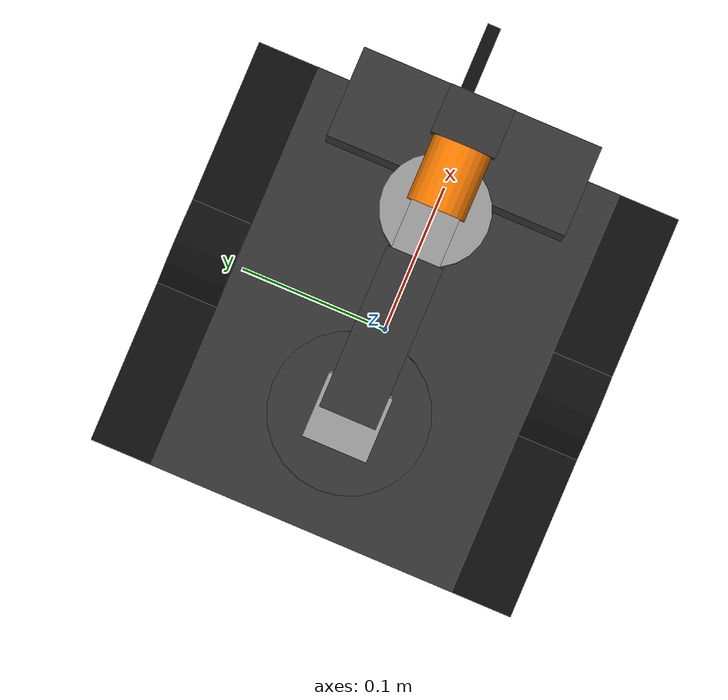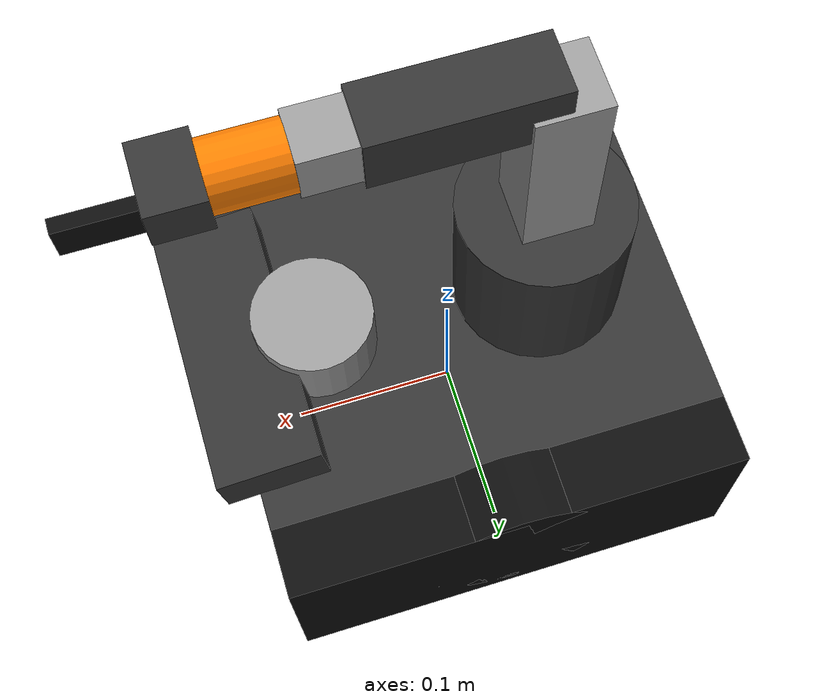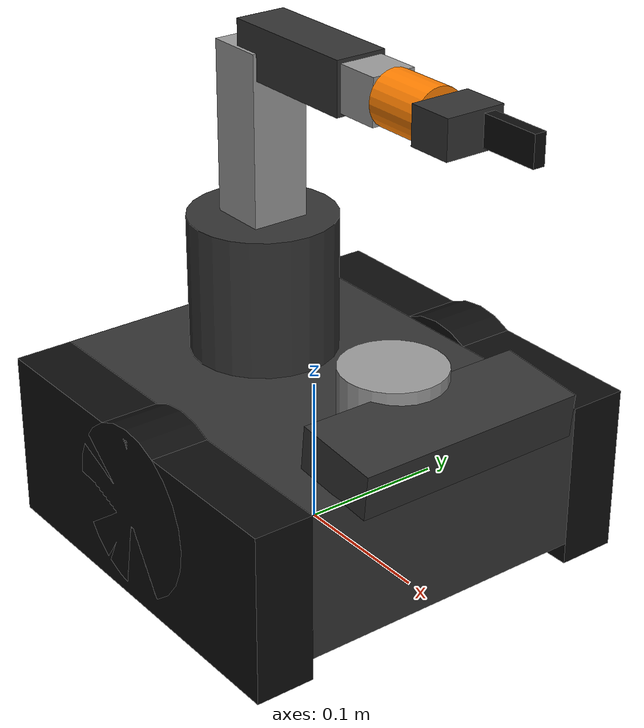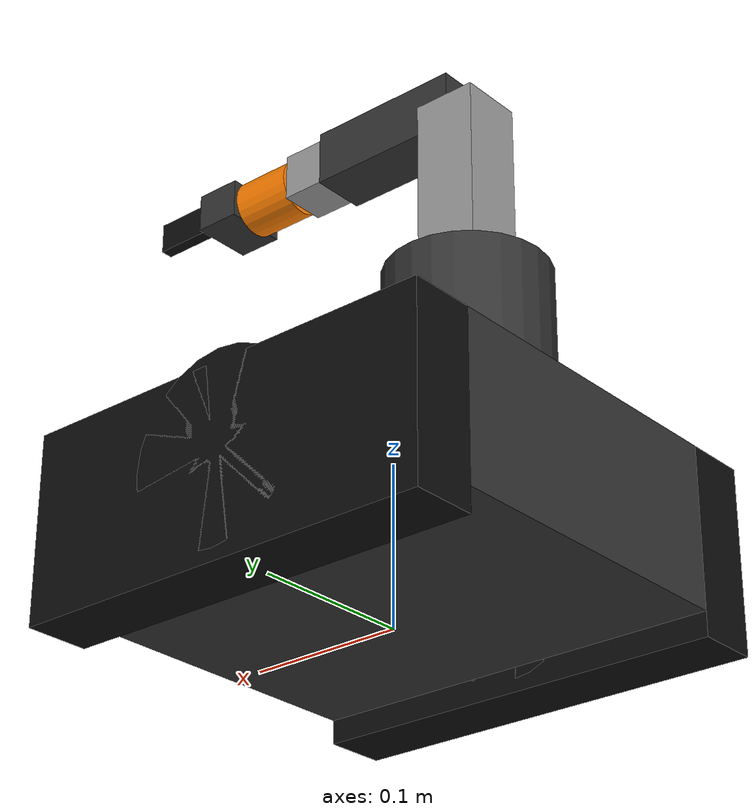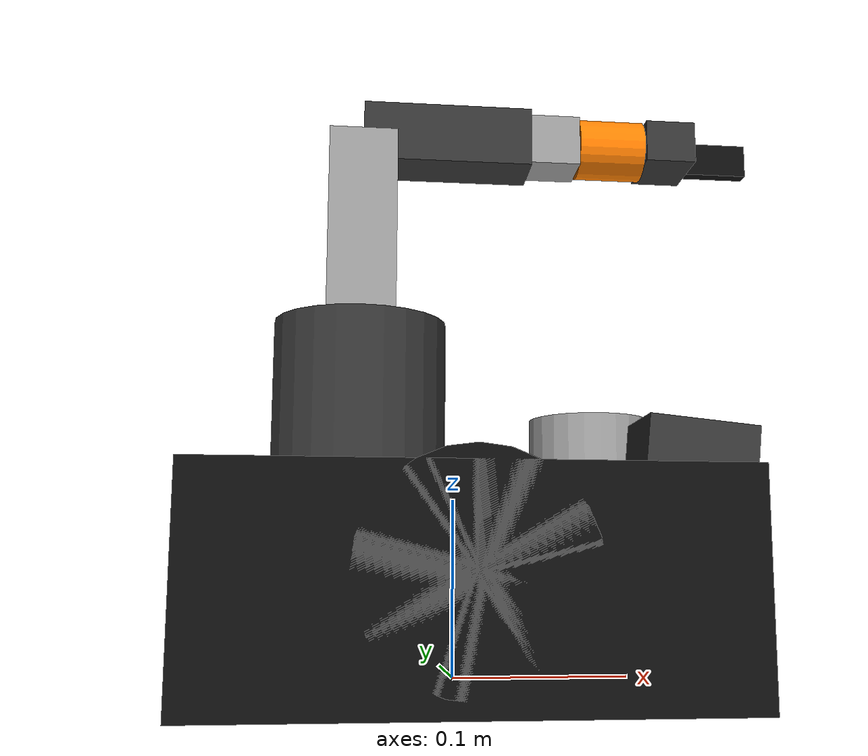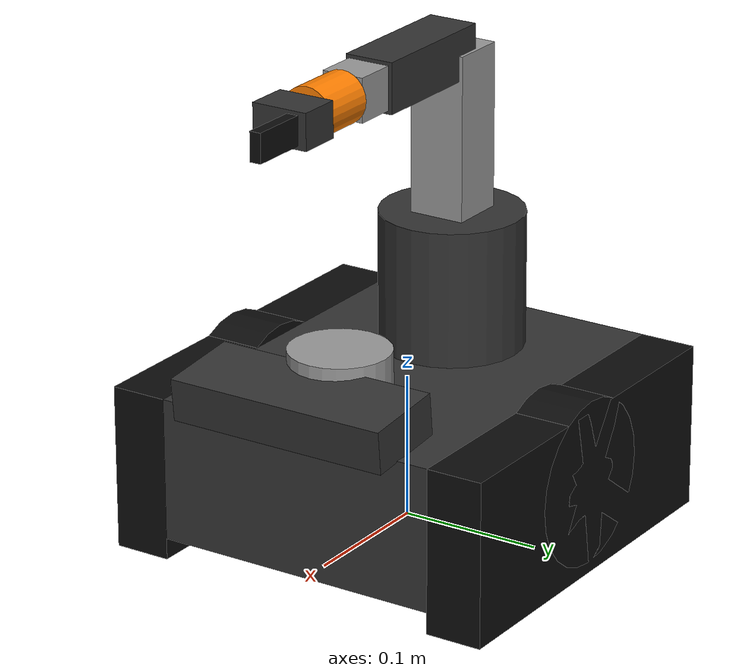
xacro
<?xml version="1.0"?>
<robot name="lunar_rover" xmlns:xacro="http://www.ros.org/wiki/xacro">

  <xacro:property name="PI" value="3.14159265"/>

  <!-- Chasis -->
  <xacro:property name="chassis_length" value="0.27"/>
  <xacro:property name="chassis_width"  value="0.205"/>
  <xacro:property name="chassis_height" value="0.10"/>
  <xacro:property name="chassis_mass"   value="3.5"/>

  <!-- Ruedas motrices -->
  <xacro:property name="wheel_radius"   value="0.0575"/>
  <xacro:property name="wheel_width"    value="0.04"/>
  <xacro:property name="wheel_mass"     value="0.2"/>

  <!-- Orugas (SOLO VISUALES ahora) -->
  <xacro:property name="track_length"   value="0.27"/>
  <xacro:property name="track_width"    value="0.04"/>
  <xacro:property name="track_height"   value="0.115"/>
  <xacro:property name="track_offset_y" value="0.1225"/>

  <!-- Brazo -->
  <xacro:property name="base_h"     value="0.095"/>
  <xacro:property name="upper_l"    value="0.115"/>
  <xacro:property name="forearm_l"  value="0.100"/>
  <xacro:property name="wrist_p_l"  value="0.030"/>
  <xacro:property name="wrist_r_l"  value="0.040"/>
  <xacro:property name="gripper_l"  value="0.030"/>

  <material name="dark_grey"><color rgba="0.2 0.2 0.2 1"/></material>
  <material name="light_grey"><color rgba="0.6 0.6 0.6 1"/></material>
  <material name="black"><color rgba="0.05 0.05 0.05 1"/></material>
  <material name="orange"><color rgba="1.0 0.5 0.0 1"/></material>

  <xacro:macro name="box_inertia" params="m x y z">
    <inertial>
      <mass value="${m}"/>
      <inertia ixx="${m*(y*y+z*z)/12}" ixy="0" ixz="0"
               iyy="${m*(x*x+z*z)/12}" iyz="0"
               izz="${m*(x*x+y*y)/12}"/>
    </inertial>
  </xacro:macro>

  <xacro:macro name="cylinder_inertia" params="m r h">
    <inertial>
      <mass value="${m}"/>
      <inertia ixx="${m*(3*r*r+h*h)/12}" ixy="0" ixz="0"
               iyy="${m*(3*r*r+h*h)/12}" iyz="0"
               izz="${m*r*r/2}"/>
    </inertial>
  </xacro:macro>

  <link name="base_footprint"/>

  <joint name="base_joint" type="fixed">
    <parent link="base_footprint"/>
    <child link="base_link"/>
    <!-- base_link a la altura del centro de las ruedas -->
    <origin xyz="0 0 ${wheel_radius}" rpy="0 0 0"/>
  </joint>

  <!-- ============================================================
       CHASIS PRINCIPAL
       ============================================================ -->
  <link name="base_link">
    <visual>
      <origin xyz="0 0 0" rpy="0 0 0"/>
      <geometry>
        <box size="${chassis_length} ${chassis_width} ${chassis_height}"/>
      </geometry>
      <material name="dark_grey"/>
    </visual>
    <collision>
      <origin xyz="0 0 0" rpy="0 0 0"/>
      <geometry>
        <box size="${chassis_length} ${chassis_width} ${chassis_height}"/>
      </geometry>
    </collision>
    <xacro:box_inertia m="${chassis_mass}"
                       x="${chassis_length}"
                       y="${chassis_width}"
                       z="${chassis_height}"/>
  </link>

  <xacro:macro name="track" params="side reflect">
    <link name="track_${side}">
      <visual>
        <origin xyz="0 0 0" rpy="0 0 0"/>
        <geometry>
          <box size="${track_length} ${track_width} ${track_height}"/>
        </geometry>
        <material name="black"/>
      </visual>
      <!-- NO collision aquí — orugas son visuales nomas -->
      <inertial>
        <mass value="0.05"/>
        <inertia ixx="0.0001" ixy="0" ixz="0"
                 iyy="0.0001" iyz="0"
                 izz="0.0001"/>
      </inertial>
    </link>

    <joint name="track_${side}_joint" type="fixed">
      <parent link="base_link"/>
      <child link="track_${side}"/>
      <!-- Centrada vertical respecto al chasis -->
      <origin xyz="0 ${reflect*track_offset_y} -0.0075" rpy="0 0 0"/>
    </joint>
  </xacro:macro>

  <xacro:track side="left"  reflect="1"/>
  <xacro:track side="right" reflect="-1"/>

  <xacro:macro name="drive_wheel" params="side reflect">
    <link name="wheel_${side}">
      <visual>
        <origin xyz="0 0 0" rpy="${PI/2} 0 0"/>
        <geometry>
          <cylinder radius="${wheel_radius}" length="${wheel_width}"/>
        </geometry>
        <material name="black"/>
      </visual>
      <collision>
        <origin xyz="0 0 0" rpy="${PI/2} 0 0"/>
        <geometry>
          <cylinder radius="${wheel_radius}" length="${wheel_width}"/>
        </geometry>
      </collision>
      <xacro:cylinder_inertia m="${wheel_mass}" r="${wheel_radius}" h="${wheel_width}"/>
    </link>

    <joint name="wheel_${side}_joint" type="continuous">
      <parent link="base_link"/>
      <child link="wheel_${side}"/>
      <!-- z=0: centro de la rueda en la misma altura que base_link -->
      <!-- y: ligeramente fuera del chasis para que las orugas las cubran -->
      <origin xyz="0 ${reflect*(chassis_width/2 + 0.02)} 0" rpy="0 0 0"/>
      <axis xyz="0 1 0"/>
      <dynamics damping="0.05" friction="0.1"/>
    </joint>
  </xacro:macro>

  <xacro:drive_wheel side="left"  reflect="1"/>
  <xacro:drive_wheel side="right" reflect="-1"/>

  <!-- ============================================================
       SENSOR LIDAR — LD14P
       ============================================================ -->
  <link name="lidar_link">
    <visual>
      <origin xyz="0 0 0" rpy="0 0 0"/>
      <geometry>
        <cylinder radius="0.035" length="0.04"/>
      </geometry>
      <material name="light_grey"/>
    </visual>
    <collision>
      <origin xyz="0 0 0" rpy="0 0 0"/>
      <geometry>
        <cylinder radius="0.035" length="0.04"/>
      </geometry>
    </collision>
    <xacro:cylinder_inertia m="0.1" r="0.035" h="0.04"/>
  </link>

  <joint name="lidar_joint" type="fixed">
    <parent link="base_link"/>
    <child link="lidar_link"/>
    <origin xyz="0.08 0 ${chassis_height/2 + 0.02}" rpy="0 0 0"/>
  </joint>

  <!-- ============================================================
       CÁMARA RGB-D — AstraPro
       ============================================================ -->
  <link name="camera_link">
    <visual>
      <origin xyz="0 0 0" rpy="0 0 0"/>
      <geometry>
        <box size="0.06 0.16 0.03"/>
      </geometry>
      <material name="dark_grey"/>
    </visual>
    <collision>
      <geometry>
        <box size="0.06 0.16 0.03"/>
      </geometry>
    </collision>
    <xacro:box_inertia m="0.08" x="0.06" y="0.16" z="0.03"/>
  </link>

  <joint name="camera_joint" type="fixed">
    <parent link="base_link"/>
    <child link="camera_link"/>
    <!-- Inclinación reducida a 0.1 rad (5.7 grados) — más estable visualmente -->
    <origin xyz="${chassis_length/2 - 0.01} 0 ${chassis_height/2 + 0.015}" rpy="0 0.1 0"/>
  </joint>

  <link name="camera_optical_link"/>
  <joint name="camera_optical_joint" type="fixed">
    <parent link="camera_link"/>
    <child link="camera_optical_link"/>
    <origin xyz="0 0 0" rpy="${-PI/2} 0 ${-PI/2}"/>
  </joint>

  <!-- ============================================================
       BRAZO ROBÓTICO — 6 DOF
       ============================================================ -->
  <link name="arm_base_link">
    <visual>
      <origin xyz="0 0 ${base_h/2}" rpy="0 0 0"/>
      <geometry>
        <cylinder radius="0.05" length="${base_h}"/>
      </geometry>
      <material name="dark_grey"/>
    </visual>
    <collision>
      <origin xyz="0 0 ${base_h/2}" rpy="0 0 0"/>
      <geometry>
        <cylinder radius="0.05" length="${base_h}"/>
      </geometry>
    </collision>
    <xacro:cylinder_inertia m="0.3" r="0.05" h="${base_h}"/>
  </link>

  <joint name="arm_base_joint" type="fixed">
    <parent link="base_link"/>
    <child link="arm_base_link"/>
    <origin xyz="${-chassis_length/2 + 0.08} 0 ${chassis_height/2}" rpy="0 0 0"/>
  </joint>

  <joint name="joint_1" type="revolute">
    <parent link="arm_base_link"/>
    <child link="link_1"/>
    <origin xyz="0 0 ${base_h}" rpy="0 0 0"/>
    <axis xyz="0 0 1"/>
    <limit lower="${-PI}" upper="${PI}" effort="9.4" velocity="3.14"/>
    <dynamics damping="0.05" friction="0.1"/>
  </joint>

  <link name="link_1">
    <visual>
      <origin xyz="0 0 ${upper_l/2}" rpy="0 0 0"/>
      <geometry>
        <box size="0.04 0.04 ${upper_l}"/>
      </geometry>
      <material name="light_grey"/>
    </visual>
    <collision>
      <origin xyz="0 0 ${upper_l/2}" rpy="0 0 0"/>
      <geometry>
        <box size="0.04 0.04 ${upper_l}"/>
      </geometry>
    </collision>
    <xacro:box_inertia m="0.15" x="0.04" y="0.04" z="${upper_l}"/>
  </link>

  <joint name="joint_2" type="revolute">
    <parent link="link_1"/>
    <child link="link_2"/>
    <origin xyz="0 0 ${upper_l}" rpy="0 0 0"/>
    <axis xyz="0 1 0"/>
    <limit lower="${-PI/2}" upper="${PI/2}" effort="9.4" velocity="3.14"/>
    <dynamics damping="0.05" friction="0.1"/>
  </joint>

  <link name="link_2">
    <visual>
      <origin xyz="${forearm_l/2} 0 0" rpy="0 ${PI/2} 0"/>
      <geometry>
        <box size="0.035 0.035 ${forearm_l}"/>
      </geometry>
      <material name="dark_grey"/>
    </visual>
    <collision>
      <origin xyz="${forearm_l/2} 0 0" rpy="0 ${PI/2} 0"/>
      <geometry>
        <box size="0.035 0.035 ${forearm_l}"/>
      </geometry>
    </collision>
    <xacro:box_inertia m="0.12" x="${forearm_l}" y="0.035" z="0.035"/>
  </link>

  <joint name="joint_3" type="revolute">
    <parent link="link_2"/>
    <child link="link_3"/>
    <origin xyz="${forearm_l} 0 0" rpy="0 0 0"/>
    <axis xyz="0 1 0"/>
    <limit lower="${-PI*2/3}" upper="${PI*2/3}" effort="9.4" velocity="3.14"/>
    <dynamics damping="0.05" friction="0.1"/>
  </joint>

  <link name="link_3">
    <visual>
      <origin xyz="${wrist_p_l/2} 0 0" rpy="0 ${PI/2} 0"/>
      <geometry>
        <box size="0.03 0.03 ${wrist_p_l}"/>
      </geometry>
      <material name="light_grey"/>
    </visual>
    <collision>
      <origin xyz="${wrist_p_l/2} 0 0" rpy="0 ${PI/2} 0"/>
      <geometry>
        <box size="0.03 0.03 ${wrist_p_l}"/>
      </geometry>
    </collision>
    <xacro:box_inertia m="0.05" x="${wrist_p_l}" y="0.03" z="0.03"/>
  </link>

  <joint name="joint_4" type="revolute">
    <parent link="link_3"/>
    <child link="link_4"/>
    <origin xyz="${wrist_p_l} 0 0" rpy="0 0 0"/>
    <axis xyz="0 1 0"/>
    <limit lower="${-PI/2}" upper="${PI/2}" effort="1.8" velocity="5.24"/>
    <dynamics damping="0.02" friction="0.05"/>
  </joint>

  <link name="link_4">
    <visual>
      <origin xyz="${wrist_r_l/2} 0 0" rpy="0 ${PI/2} 0"/>
      <geometry>
        <cylinder radius="0.018" length="${wrist_r_l}"/>
      </geometry>
      <material name="orange"/>
    </visual>
    <collision>
      <origin xyz="${wrist_r_l/2} 0 0" rpy="0 ${PI/2} 0"/>
      <geometry>
        <cylinder radius="0.018" length="${wrist_r_l}"/>
      </geometry>
    </collision>
    <xacro:cylinder_inertia m="0.04" r="0.018" h="${wrist_r_l}"/>
  </link>

  <joint name="joint_5" type="revolute">
    <parent link="link_4"/>
    <child link="link_5"/>
    <origin xyz="${wrist_r_l} 0 0" rpy="0 0 0"/>
    <axis xyz="1 0 0"/>
    <limit lower="${-PI}" upper="${PI}" effort="1.8" velocity="5.24"/>
    <dynamics damping="0.02" friction="0.05"/>
  </joint>

  <link name="link_5">
    <visual>
      <origin xyz="${gripper_l/2} 0 0" rpy="0 ${PI/2} 0"/>
      <geometry>
        <box size="0.025 0.04 ${gripper_l}"/>
      </geometry>
      <material name="dark_grey"/>
    </visual>
    <collision>
      <origin xyz="${gripper_l/2} 0 0" rpy="0 ${PI/2} 0"/>
      <geometry>
        <box size="0.025 0.04 ${gripper_l}"/>
      </geometry>
    </collision>
    <xacro:box_inertia m="0.03" x="${gripper_l}" y="0.04" z="0.025"/>
  </link>

  <joint name="joint_6" type="revolute">
    <parent link="link_5"/>
    <child link="gripper_link"/>
    <origin xyz="${gripper_l} 0 0" rpy="0 0 0"/>
    <axis xyz="0 0 1"/>
    <limit lower="0.0" upper="${PI/3}" effort="1.8" velocity="5.24"/>
    <dynamics damping="0.01" friction="0.02"/>
  </joint>

  <link name="gripper_link">
    <visual>
      <origin xyz="0.02 0.01 0" rpy="0 0 0"/>
      <geometry>
        <box size="0.04 0.008 0.02"/>
      </geometry>
      <material name="black"/>
    </visual>
    <collision>
      <origin xyz="0.02 0.01 0" rpy="0 0 0"/>
      <geometry>
        <box size="0.04 0.008 0.02"/>
      </geometry>
    </collision>
    <xacro:box_inertia m="0.015" x="0.04" y="0.008" z="0.02"/>
  </link>

  <link name="tcp_link"/>
  <joint name="tcp_joint" type="fixed">
    <parent link="gripper_link"/>
    <child link="tcp_link"/>
    <origin xyz="0.045 0 0" rpy="0 0 0"/>
  </joint>

  <!-- ============================================================
       PLUGINS GAZEBO
       ============================================================ -->

  <!-- Diff drive: aceleración reducida a 3.0 m/s2 (era 10.0) -->
  <gazebo>
    <plugin name="differential_drive_controller"
            filename="libgazebo_ros_diff_drive.so">
      <ros><namespace>/rover</namespace></ros>
      <left_joint>wheel_left_joint</left_joint>
      <right_joint>wheel_right_joint</right_joint>
      <wheel_separation>0.245</wheel_separation>
      <wheel_diameter>0.115</wheel_diameter>
      <max_wheel_torque>20</max_wheel_torque>
      <max_wheel_acceleration>3.0</max_wheel_acceleration>
      <command_topic>cmd_vel</command_topic>
      <publish_odom>true</publish_odom>
      <publish_odom_tf>true</publish_odom_tf>
      <publish_wheel_tf>false</publish_wheel_tf>
      <odometry_topic>odom</odometry_topic>
      <odometry_frame>odom</odometry_frame>
      <robot_base_frame>base_footprint</robot_base_frame>
    </plugin>
  </gazebo>

  <!-- LIDAR -->
  <gazebo reference="lidar_link">
    <sensor name="lidar" type="ray">
      <always_on>true</always_on>
      <visualize>false</visualize>
      <update_rate>10</update_rate>
      <ray>
        <scan>
          <horizontal>
            <samples>360</samples>
            <resolution>1</resolution>
            <min_angle>${-PI}</min_angle>
            <max_angle>${PI}</max_angle>
          </horizontal>
        </scan>
        <range>
          <min>0.15</min>
          <max>12.0</max>
          <resolution>0.01</resolution>
        </range>
        <noise>
          <type>gaussian</type>
          <mean>0.0</mean>
          <stddev>0.01</stddev>
        </noise>
      </ray>
      <plugin name="lidar_plugin" filename="libgazebo_ros_ray_sensor.so">
        <ros>
          <namespace>/rover</namespace>
          <remapping>~/out:=scan</remapping>
        </ros>
        <output_type>sensor_msgs/LaserScan</output_type>
        <frame_name>lidar_link</frame_name>
      </plugin>
    </sensor>
  </gazebo>

  <!-- Cámara RGB -->
  <gazebo reference="camera_link">
    <sensor name="camera_rgb" type="camera">
      <always_on>true</always_on>
      <update_rate>30</update_rate>
      <visualize>true</visualize>
      <camera>
        <horizontal_fov>1.089</horizontal_fov>
        <image>
          <width>640</width>
          <height>480</height>
          <format>R8G8B8</format>
        </image>
        <clip><near>0.05</near><far>10.0</far></clip>
        <noise>
          <type>gaussian</type>
          <mean>0.0</mean>
          <stddev>0.005</stddev>
        </noise>
      </camera>
      <plugin name="camera_plugin" filename="libgazebo_ros_camera.so">
        <ros>
          <namespace>/rover</namespace>
          <remapping>image_raw:=camera/image_raw</remapping>
          <remapping>camera_info:=camera/camera_info</remapping>
        </ros>
        <frame_name>camera_optical_link</frame_name>
      </plugin>
    </sensor>

    <sensor name="camera_depth" type="depth">
      <always_on>true</always_on>
      <update_rate>15</update_rate>
      <camera>
        <horizontal_fov>1.089</horizontal_fov>
        <image><width>640</width><height>480</height></image>
        <clip><near>0.1</near><far>8.0</far></clip>
      </camera>
      <plugin name="depth_plugin" filename="libgazebo_ros_camera.so">
        <ros>
          <namespace>/rover</namespace>
          <remapping>image_raw:=depth/image_raw</remapping>
          <remapping>camera_info:=depth/camera_info</remapping>
          <remapping>points:=depth/points</remapping>
        </ros>
        <frame_name>camera_optical_link</frame_name>
      </plugin>
    </sensor>
  </gazebo>

  <!-- IMU -->
  <gazebo reference="base_link">
    <gravity>true</gravity>
    <sensor name="imu_sensor" type="imu">
      <always_on>true</always_on>
      <update_rate>100</update_rate>
      <visualize>false</visualize>
      <imu>
        <angular_velocity>
          <x><noise type="gaussian"><mean>0</mean><stddev>0.009</stddev></noise></x>
          <y><noise type="gaussian"><mean>0</mean><stddev>0.009</stddev></noise></y>
          <z><noise type="gaussian"><mean>0</mean><stddev>0.009</stddev></noise></z>
        </angular_velocity>
        <linear_acceleration>
          <x><noise type="gaussian"><mean>0</mean><stddev>0.021</stddev></noise></x>
          <y><noise type="gaussian"><mean>0</mean><stddev>0.021</stddev></noise></y>
          <z><noise type="gaussian"><mean>0</mean><stddev>0.021</stddev></noise></z>
        </linear_acceleration>
      </imu>
      <plugin name="imu_plugin" filename="libgazebo_ros_imu_sensor.so">
        <ros>
          <namespace>/rover</namespace>
          <remapping>~/out:=imu/data</remapping>
        </ros>
        <frame_name>base_link</frame_name>
      </plugin>
    </sensor>
  </gazebo>

  <gazebo reference="track_left">
    <material>Gazebo/Black</material>
  </gazebo>
  <gazebo reference="track_right">
    <material>Gazebo/Black</material>
  </gazebo>

  <gazebo reference="wheel_left">
    <mu1>0.8</mu1>
    <mu2>0.8</mu2>
    <kp>100000</kp>
    <kd>10</kd>
    <fdir1>1 0 0</fdir1>
    <material>Gazebo/Black</material>
  </gazebo>
  <gazebo reference="wheel_right">
    <mu1>0.8</mu1>
    <mu2>0.8</mu2>
    <kp>100000</kp>
    <kd>10</kd>
    <fdir1>1 0 0</fdir1>
    <material>Gazebo/Black</material>
  </gazebo>

</robot>
